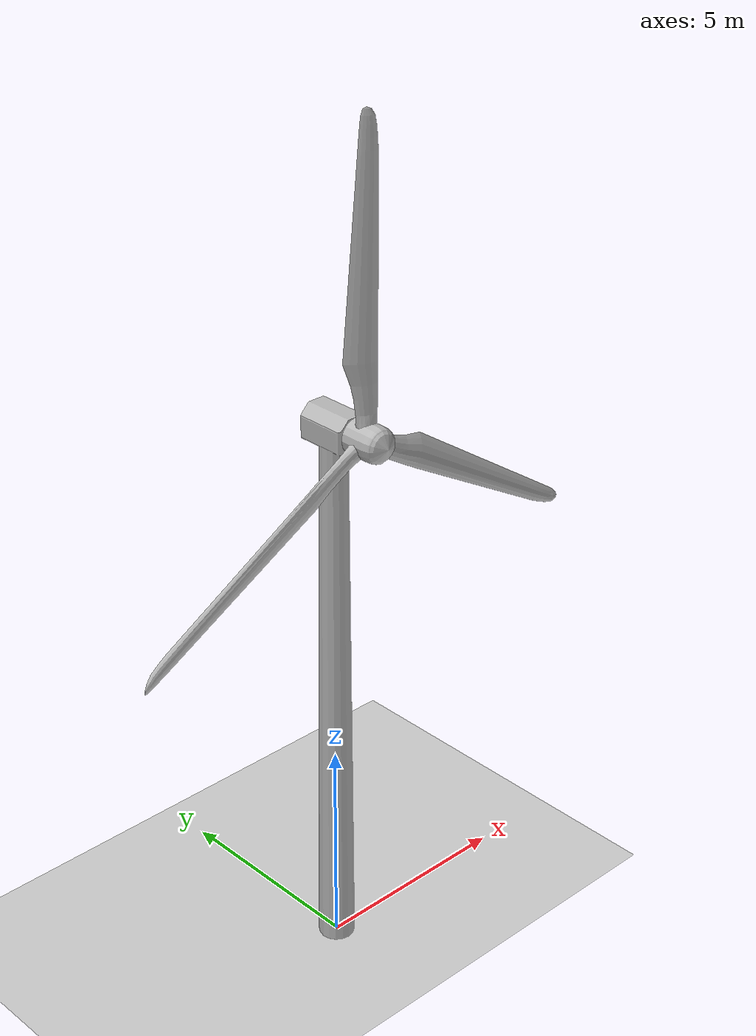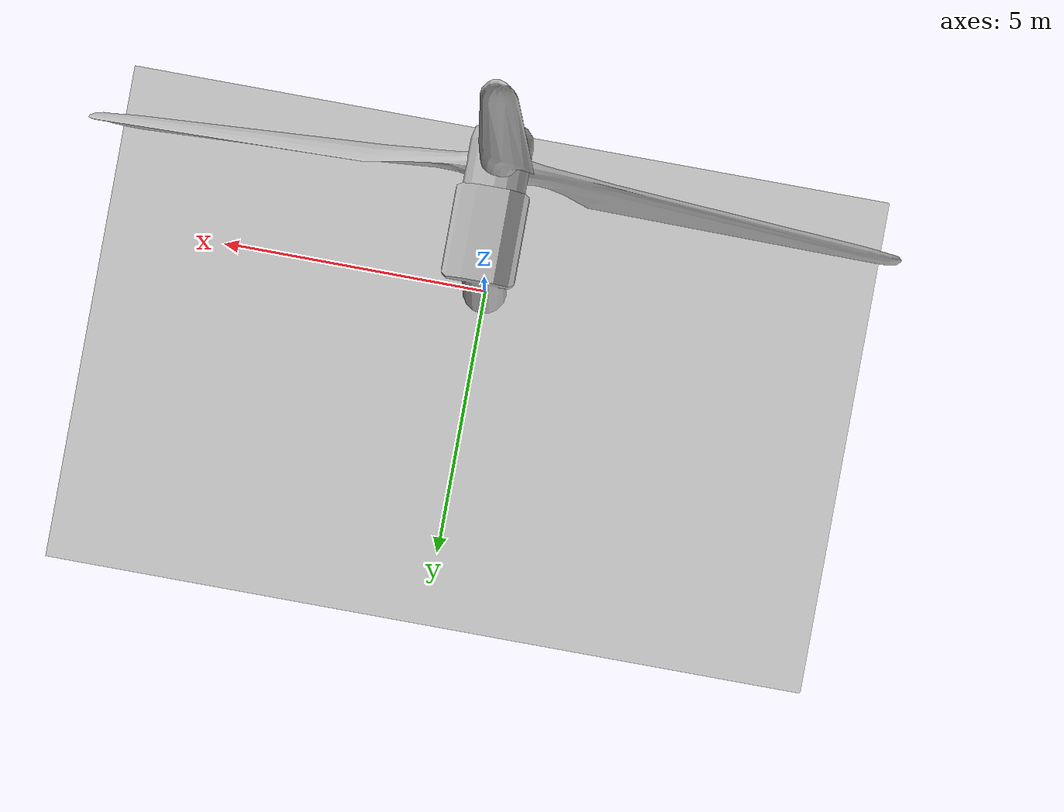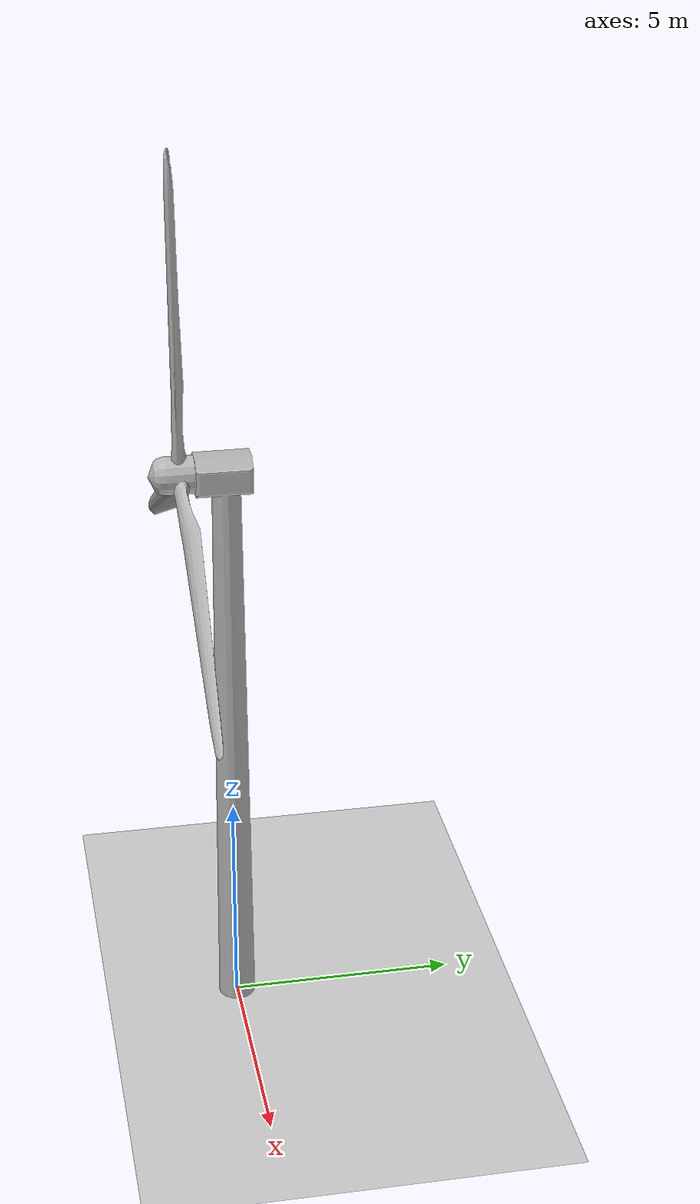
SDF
<?xml version="1.0" ?>
<sdf version="1.7">
  <world name="wind_turbine_gazebo_world">
    <include>
      <uri>model://ground_plane</uri>
    </include>
    <include>
      <uri>model://sun</uri>
    </include>

    <model name='wind_turbine'>
    <link name='base_link'>
      <inertial>
        <pose>0 0 0 0 -0 0</pose>
        <mass>60</mass>
        <inertia>
          <ixx>957.6</ixx>
          <ixy>0</ixy>
          <ixz>0</ixz>
          <iyy>957.6</iyy>
          <iyz>0</iyz>
          <izz>10.8</izz>
        </inertia>
      </inertial>
      <collision name='base_link_fixed_joint_lump__support_collision_collision'>
        <pose>0 0 6.8 0 -0 0</pose>
        <geometry>
          <cylinder>
            <length>13.6</length>
            <radius>0.6</radius>
          </cylinder>
        </geometry>
      </collision>
      <visual name='base_link_visual'>
        <pose>0 0 0 0 -0 0</pose>
        <geometry>
          <sphere>
            <radius>0.001</radius>
          </sphere>
        </geometry>
      </visual>
      <visual name='base_link_fixed_joint_lump__support_link_visual_1'>
        <pose>0 0 0 0 -0 0</pose>
        <geometry>
          <mesh>
            <scale>1 1 1</scale>
            <uri>/home/amov/Prometheus/Simulator/gazebo_simulator/models/wind_turbine_gazebo/meshes/Support.stl</uri>
          </mesh>
        </geometry>
      </visual>
    </link>
    <joint name='center2support' type='revolute'>
      <pose relative_to='base_link'>0 -1.1365 13.168 0 -0 0</pose>
      <parent>base_link</parent>
      <child>center_link</child>
      <axis>
        <xyz>0 1 0</xyz>
        <limit>
          <lower>-3.14159</lower>
          <upper>3.14159</upper>
          <effort>1000</effort>
          <velocity>0.5</velocity>
        </limit>
        <dynamics>
          <spring_reference>0</spring_reference>
          <spring_stiffness>0</spring_stiffness>
        </dynamics>
      </axis>
    </joint>
    <link name='center_link'>
      <pose relative_to='center2support'>0 0 0 0 -0 0</pose>
      <inertial>
        <pose>0 0 0 0 -0 0</pose>
        <mass>17.5</mass>
        <inertia>
          <ixx>26.99</ixx>
          <ixy>0</ixy>
          <ixz>0</ixz>
          <iyy>1.96</iyy>
          <iyz>0</iyz>
          <izz>27.25</izz>
        </inertia>
      </inertial>
      <collision name='center_link_fixed_joint_lump__center_collision_collision'>
        <pose>0 0 0 0 -0 0</pose>
        <geometry>
          <box>
            <size>0.8 1.1 0.8</size>
          </box>
        </geometry>
      </collision>
      <collision name='center_link_fixed_joint_lump__blade1_collision_collision_1'>
        <pose>2.77 0 -1.6 0 -1.05 0</pose>
        <geometry>
          <box>
            <size>0.7 0.4 6.4</size>
          </box>
        </geometry>
      </collision>
      <collision name='center_link_fixed_joint_lump__blade1_collision_collision_2'>
        <pose>-2.77 0 -1.6 0 1.05 0</pose>
        <geometry>
          <box>
            <size>0.7 0.4 6.4</size>
          </box>
        </geometry>
      </collision>
      <collision name='center_link_fixed_joint_lump__blade3_collision_collision_3'>
        <pose>0 0 3.2 0 -0 0</pose>
        <geometry>
          <box>
            <size>0.7 0.4 6.4</size>
          </box>
        </geometry>
      </collision>
      <visual name='center_link_fixed_joint_lump__center_visual1_visual'>
        <pose>0 1.1365 -13.168 0 -0 0</pose>
        <geometry>
          <mesh>
            <scale>1 1 1</scale>
            <uri>/home/amov/Prometheus/Simulator/gazebo_simulator/models/wind_turbine_gazebo/meshes/Center.stl</uri>
          </mesh>
        </geometry>
      </visual>
      <visual name='center_link_fixed_joint_lump__blade1_visual1_visual_1'>
        <pose>0 1.1365 -13.168 0 -0 0</pose>
        <geometry>
          <mesh>
            <scale>1 1 1</scale>
            <uri>/home/amov/Prometheus/Simulator/gazebo_simulator/models/wind_turbine_gazebo/meshes/Blade1.stl</uri>
          </mesh>
        </geometry>
      </visual>
      <visual name='center_link_fixed_joint_lump__blade2_visual1_visual_2'>
        <pose>0 1.1365 -13.168 0 -0 0</pose>
        <geometry>
          <mesh>
            <scale>1 1 1</scale>
            <uri>/home/amov/Prometheus/Simulator/gazebo_simulator/models/wind_turbine_gazebo/meshes/Blade2.stl</uri>
          </mesh>
        </geometry>
      </visual>
      <visual name='center_link_fixed_joint_lump__blade3_visual1_visual_3'>
        <pose>0 1.1365 -13.168 0 -0 0</pose>
        <geometry>
          <mesh>
            <scale>1 1 1</scale>
            <uri>/home/amov/Prometheus/Simulator/gazebo_simulator/models/wind_turbine_gazebo/meshes/Blade3.stl</uri>
          </mesh>
        </geometry>
      </visual>
    </link>
    <frame name='support2base' attached_to='base_link'>
      <pose>0 0 0 0 -0 0</pose>
    </frame>
    <frame name='support_link' attached_to='support2base'/>
    <frame name='blade12center' attached_to='center_link'>
      <pose>0 0 0 0 -0 0</pose>
    </frame>
    <frame name='blade1_link' attached_to='blade12center'/>
    <frame name='blade22center' attached_to='center_link'>
      <pose>0 0 0 0 -0 0</pose>
    </frame>
    <frame name='blade2_link' attached_to='blade22center'/>
    <frame name='blade32center' attached_to='center_link'>
      <pose>0 0 0 0 -0 0</pose>
    </frame>
    <frame name='blade3_link' attached_to='blade32center'/>
  </model>
  </world>
</sdf>
